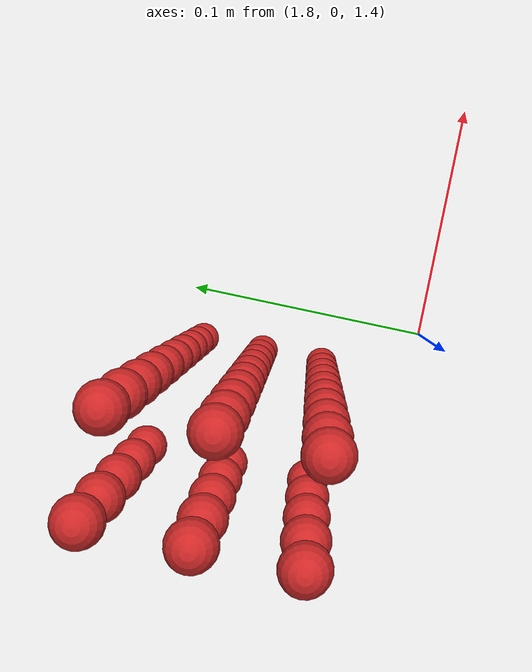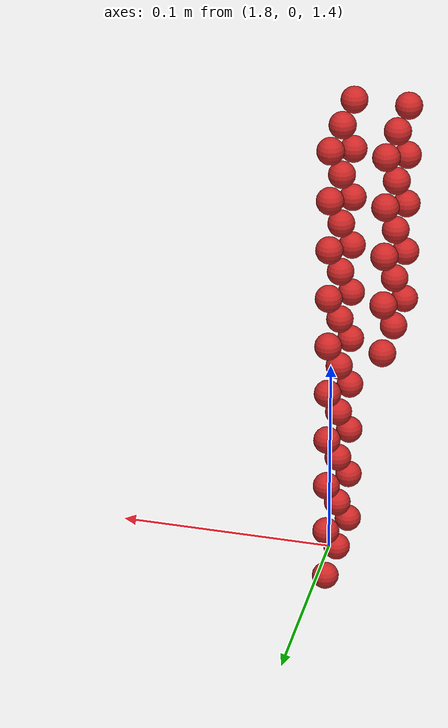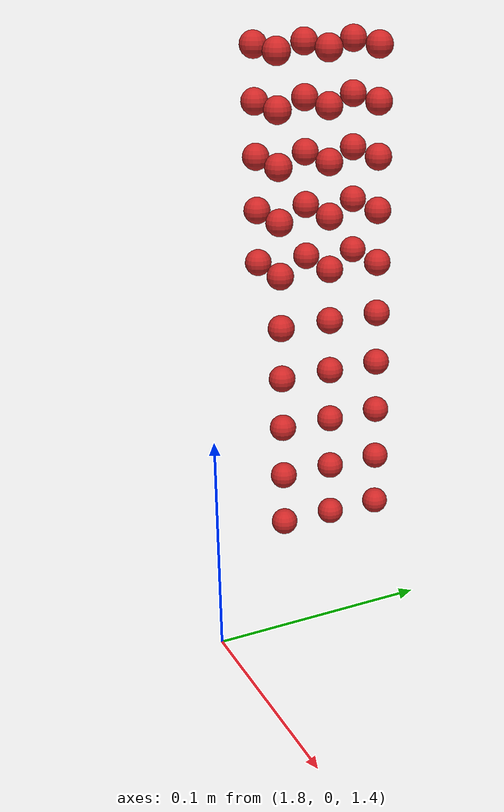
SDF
<sdf version="1.4">
 <world name="default">
  <model name="ground_plane">
   <static>1</static>
   <link name="link">
    <collision name="collision">
     <geometry><plane><normal>0 0 1</normal><size>100 100</size></plane></geometry>
     <surface><friction><ode><mu>100</mu><mu2>50</mu2></ode></friction></surface>
    </collision>
    <visual name="visual">
     <cast_shadows>0</cast_shadows>
     <geometry><plane><normal>0 0 1</normal><size>100 100</size></plane></geometry>
     <material>
      <script><uri>file://media/materials/scripts/gazebo.material</uri><name>Gazebo/Grey</name></script>
     </material>
    </visual>
    <velocity_decay><linear>0</linear><angular>0</angular></velocity_decay>
   </link>
  </model>
  <model name="sphere2">
   <pose>0.891343 0.020112 0.722288 0 0 0</pose>
   <link name="link">
    <pose>0.891343 0.020112 0.722288 0 0 0</pose>
    <inertial>
     <mass>0.001</mass>
     <inertia>
      <ixx>0.004</ixx>
      <ixy>0.000000</ixy>
      <ixz>0.000000</ixz>
      <iyy>0.004</iyy>
      <iyz>0.000000</iyz>
      <izz>0.004</izz>
     </inertia>
    </inertial>
    <collision name="collision">
     <surface>
      <contact><ode><kp>10000000000.000000</kp><kd>1</kd></ode></contact>
      <friction><ode><mu>0.01</mu><mu2>0.01</mu2></ode></friction>
     </surface>
     <geometry><sphere><radius>0.006</radius></sphere></geometry>
    </collision>
    <visual name="visual">
     <geometry><sphere><radius>0.006</radius></sphere></geometry>
     <material>
      <script><uri>file://media/materials/scripts/gazebo.material</uri><name>Gazebo/Red</name></script>
     </material>
    </visual>
   </link>
  </model>
  <model name="sphere5">
   <pose>0.891343 0.032112 0.722288 0 0 0</pose>
   <link name="link">
    <pose>0.891343 0.032112 0.722288 0 0 0</pose>
    <inertial>
     <mass>0.001</mass>
     <inertia>
      <ixx>0.004</ixx>
      <ixy>0.000000</ixy>
      <ixz>0.000000</ixz>
      <iyy>0.004</iyy>
      <iyz>0.000000</iyz>
      <izz>0.004</izz>
     </inertia>
    </inertial>
    <collision name="collision">
     <surface>
      <contact><ode><kp>10000000000.000000</kp><kd>1</kd></ode></contact>
      <friction><ode><mu>0.01</mu><mu2>0.01</mu2></ode></friction>
     </surface>
     <geometry><sphere><radius>0.006</radius></sphere></geometry>
    </collision>
    <visual name="visual">
     <geometry><sphere><radius>0.006</radius></sphere></geometry>
     <material>
      <script><uri>file://media/materials/scripts/gazebo.material</uri><name>Gazebo/Red</name></script>
     </material>
    </visual>
   </link>
  </model>
  <model name="sphere8">
   <pose>0.891343 0.044112 0.722288 0 0 0</pose>
   <link name="link">
    <pose>0.891343 0.044112 0.722288 0 0 0</pose>
    <inertial>
     <mass>0.001</mass>
     <inertia>
      <ixx>0.004</ixx>
      <ixy>0.000000</ixy>
      <ixz>0.000000</ixz>
      <iyy>0.004</iyy>
      <iyz>0.000000</iyz>
      <izz>0.004</izz>
     </inertia>
    </inertial>
    <collision name="collision">
     <surface>
      <contact><ode><kp>10000000000.000000</kp><kd>1</kd></ode></contact>
      <friction><ode><mu>0.01</mu><mu2>0.01</mu2></ode></friction>
     </surface>
     <geometry><sphere><radius>0.006</radius></sphere></geometry>
    </collision>
    <visual name="visual">
     <geometry><sphere><radius>0.006</radius></sphere></geometry>
     <material>
      <script><uri>file://media/materials/scripts/gazebo.material</uri><name>Gazebo/Red</name></script>
     </material>
    </visual>
   </link>
  </model>
  <model name="sphere11">
   <pose>0.891343 0.020112 0.734288 0 0 0</pose>
   <link name="link">
    <pose>0.891343 0.020112 0.734288 0 0 0</pose>
    <inertial>
     <mass>0.001</mass>
     <inertia>
      <ixx>0.004</ixx>
      <ixy>0.000000</ixy>
      <ixz>0.000000</ixz>
      <iyy>0.004</iyy>
      <iyz>0.000000</iyz>
      <izz>0.004</izz>
     </inertia>
    </inertial>
    <collision name="collision">
     <surface>
      <contact><ode><kp>10000000000.000000</kp><kd>1</kd></ode></contact>
      <friction><ode><mu>0.01</mu><mu2>0.01</mu2></ode></friction>
     </surface>
     <geometry><sphere><radius>0.006</radius></sphere></geometry>
    </collision>
    <visual name="visual">
     <geometry><sphere><radius>0.006</radius></sphere></geometry>
     <material>
      <script><uri>file://media/materials/scripts/gazebo.material</uri><name>Gazebo/Red</name></script>
     </material>
    </visual>
   </link>
  </model>
  <model name="sphere14">
   <pose>0.891343 0.032112 0.734288 0 0 0</pose>
   <link name="link">
    <pose>0.891343 0.032112 0.734288 0 0 0</pose>
    <inertial>
     <mass>0.001</mass>
     <inertia>
      <ixx>0.004</ixx>
      <ixy>0.000000</ixy>
      <ixz>0.000000</ixz>
      <iyy>0.004</iyy>
      <iyz>0.000000</iyz>
      <izz>0.004</izz>
     </inertia>
    </inertial>
    <collision name="collision">
     <surface>
      <contact><ode><kp>10000000000.000000</kp><kd>1</kd></ode></contact>
      <friction><ode><mu>0.01</mu><mu2>0.01</mu2></ode></friction>
     </surface>
     <geometry><sphere><radius>0.006</radius></sphere></geometry>
    </collision>
    <visual name="visual">
     <geometry><sphere><radius>0.006</radius></sphere></geometry>
     <material>
      <script><uri>file://media/materials/scripts/gazebo.material</uri><name>Gazebo/Red</name></script>
     </material>
    </visual>
   </link>
  </model>
  <model name="sphere17">
   <pose>0.891343 0.044112 0.734288 0 0 0</pose>
   <link name="link">
    <pose>0.891343 0.044112 0.734288 0 0 0</pose>
    <inertial>
     <mass>0.001</mass>
     <inertia>
      <ixx>0.004</ixx>
      <ixy>0.000000</ixy>
      <ixz>0.000000</ixz>
      <iyy>0.004</iyy>
      <iyz>0.000000</iyz>
      <izz>0.004</izz>
     </inertia>
    </inertial>
    <collision name="collision">
     <surface>
      <contact><ode><kp>10000000000.000000</kp><kd>1</kd></ode></contact>
      <friction><ode><mu>0.01</mu><mu2>0.01</mu2></ode></friction>
     </surface>
     <geometry><sphere><radius>0.006</radius></sphere></geometry>
    </collision>
    <visual name="visual">
     <geometry><sphere><radius>0.006</radius></sphere></geometry>
     <material>
      <script><uri>file://media/materials/scripts/gazebo.material</uri><name>Gazebo/Red</name></script>
     </material>
    </visual>
   </link>
  </model>
  <model name="sphere20">
   <pose>0.891343 0.020112 0.746288 0 0 0</pose>
   <link name="link">
    <pose>0.891343 0.020112 0.746288 0 0 0</pose>
    <inertial>
     <mass>0.001</mass>
     <inertia>
      <ixx>0.004</ixx>
      <ixy>0.000000</ixy>
      <ixz>0.000000</ixz>
      <iyy>0.004</iyy>
      <iyz>0.000000</iyz>
      <izz>0.004</izz>
     </inertia>
    </inertial>
    <collision name="collision">
     <surface>
      <contact><ode><kp>10000000000.000000</kp><kd>1</kd></ode></contact>
      <friction><ode><mu>0.01</mu><mu2>0.01</mu2></ode></friction>
     </surface>
     <geometry><sphere><radius>0.006</radius></sphere></geometry>
    </collision>
    <visual name="visual">
     <geometry><sphere><radius>0.006</radius></sphere></geometry>
     <material>
      <script><uri>file://media/materials/scripts/gazebo.material</uri><name>Gazebo/Red</name></script>
     </material>
    </visual>
   </link>
  </model>
  <model name="sphere23">
   <pose>0.891343 0.032112 0.746288 0 0 0</pose>
   <link name="link">
    <pose>0.891343 0.032112 0.746288 0 0 0</pose>
    <inertial>
     <mass>0.001</mass>
     <inertia>
      <ixx>0.004</ixx>
      <ixy>0.000000</ixy>
      <ixz>0.000000</ixz>
      <iyy>0.004</iyy>
      <iyz>0.000000</iyz>
      <izz>0.004</izz>
     </inertia>
    </inertial>
    <collision name="collision">
     <surface>
      <contact><ode><kp>10000000000.000000</kp><kd>1</kd></ode></contact>
      <friction><ode><mu>0.01</mu><mu2>0.01</mu2></ode></friction>
     </surface>
     <geometry><sphere><radius>0.006</radius></sphere></geometry>
    </collision>
    <visual name="visual">
     <geometry><sphere><radius>0.006</radius></sphere></geometry>
     <material>
      <script><uri>file://media/materials/scripts/gazebo.material</uri><name>Gazebo/Red</name></script>
     </material>
    </visual>
   </link>
  </model>
  <model name="sphere26">
   <pose>0.891343 0.044112 0.746288 0 0 0</pose>
   <link name="link">
    <pose>0.891343 0.044112 0.746288 0 0 0</pose>
    <inertial>
     <mass>0.001</mass>
     <inertia>
      <ixx>0.004</ixx>
      <ixy>0.000000</ixy>
      <ixz>0.000000</ixz>
      <iyy>0.004</iyy>
      <iyz>0.000000</iyz>
      <izz>0.004</izz>
     </inertia>
    </inertial>
    <collision name="collision">
     <surface>
      <contact><ode><kp>10000000000.000000</kp><kd>1</kd></ode></contact>
      <friction><ode><mu>0.01</mu><mu2>0.01</mu2></ode></friction>
     </surface>
     <geometry><sphere><radius>0.006</radius></sphere></geometry>
    </collision>
    <visual name="visual">
     <geometry><sphere><radius>0.006</radius></sphere></geometry>
     <material>
      <script><uri>file://media/materials/scripts/gazebo.material</uri><name>Gazebo/Red</name></script>
     </material>
    </visual>
   </link>
  </model>
  <model name="sphere29">
   <pose>0.891343 0.020112 0.758288 0 0 0</pose>
   <link name="link">
    <pose>0.891343 0.020112 0.758288 0 0 0</pose>
    <inertial>
     <mass>0.001</mass>
     <inertia>
      <ixx>0.004</ixx>
      <ixy>0.000000</ixy>
      <ixz>0.000000</ixz>
      <iyy>0.004</iyy>
      <iyz>0.000000</iyz>
      <izz>0.004</izz>
     </inertia>
    </inertial>
    <collision name="collision">
     <surface>
      <contact><ode><kp>10000000000.000000</kp><kd>1</kd></ode></contact>
      <friction><ode><mu>0.01</mu><mu2>0.01</mu2></ode></friction>
     </surface>
     <geometry><sphere><radius>0.006</radius></sphere></geometry>
    </collision>
    <visual name="visual">
     <geometry><sphere><radius>0.006</radius></sphere></geometry>
     <material>
      <script><uri>file://media/materials/scripts/gazebo.material</uri><name>Gazebo/Red</name></script>
     </material>
    </visual>
   </link>
  </model>
  <model name="sphere32">
   <pose>0.891343 0.032112 0.758288 0 0 0</pose>
   <link name="link">
    <pose>0.891343 0.032112 0.758288 0 0 0</pose>
    <inertial>
     <mass>0.001</mass>
     <inertia>
      <ixx>0.004</ixx>
      <ixy>0.000000</ixy>
      <ixz>0.000000</ixz>
      <iyy>0.004</iyy>
      <iyz>0.000000</iyz>
      <izz>0.004</izz>
     </inertia>
    </inertial>
    <collision name="collision">
     <surface>
      <contact><ode><kp>10000000000.000000</kp><kd>1</kd></ode></contact>
      <friction><ode><mu>0.01</mu><mu2>0.01</mu2></ode></friction>
     </surface>
     <geometry><sphere><radius>0.006</radius></sphere></geometry>
    </collision>
    <visual name="visual">
     <geometry><sphere><radius>0.006</radius></sphere></geometry>
     <material>
      <script><uri>file://media/materials/scripts/gazebo.material</uri><name>Gazebo/Red</name></script>
     </material>
    </visual>
   </link>
  </model>
  <model name="sphere35">
   <pose>0.891343 0.044112 0.758288 0 0 0</pose>
   <link name="link">
    <pose>0.891343 0.044112 0.758288 0 0 0</pose>
    <inertial>
     <mass>0.001</mass>
     <inertia>
      <ixx>0.004</ixx>
      <ixy>0.000000</ixy>
      <ixz>0.000000</ixz>
      <iyy>0.004</iyy>
      <iyz>0.000000</iyz>
      <izz>0.004</izz>
     </inertia>
    </inertial>
    <collision name="collision">
     <surface>
      <contact><ode><kp>10000000000.000000</kp><kd>1</kd></ode></contact>
      <friction><ode><mu>0.01</mu><mu2>0.01</mu2></ode></friction>
     </surface>
     <geometry><sphere><radius>0.006</radius></sphere></geometry>
    </collision>
    <visual name="visual">
     <geometry><sphere><radius>0.006</radius></sphere></geometry>
     <material>
      <script><uri>file://media/materials/scripts/gazebo.material</uri><name>Gazebo/Red</name></script>
     </material>
    </visual>
   </link>
  </model>
  <model name="sphere38">
   <pose>0.891343 0.020112 0.770288 0 0 0</pose>
   <link name="link">
    <pose>0.891343 0.020112 0.770288 0 0 0</pose>
    <inertial>
     <mass>0.001</mass>
     <inertia>
      <ixx>0.004</ixx>
      <ixy>0.000000</ixy>
      <ixz>0.000000</ixz>
      <iyy>0.004</iyy>
      <iyz>0.000000</iyz>
      <izz>0.004</izz>
     </inertia>
    </inertial>
    <collision name="collision">
     <surface>
      <contact><ode><kp>10000000000.000000</kp><kd>1</kd></ode></contact>
      <friction><ode><mu>0.01</mu><mu2>0.01</mu2></ode></friction>
     </surface>
     <geometry><sphere><radius>0.006</radius></sphere></geometry>
    </collision>
    <visual name="visual">
     <geometry><sphere><radius>0.006</radius></sphere></geometry>
     <material>
      <script><uri>file://media/materials/scripts/gazebo.material</uri><name>Gazebo/Red</name></script>
     </material>
    </visual>
   </link>
  </model>
  <model name="sphere41">
   <pose>0.891343 0.032112 0.770288 0 0 0</pose>
   <link name="link">
    <pose>0.891343 0.032112 0.770288 0 0 0</pose>
    <inertial>
     <mass>0.001</mass>
     <inertia>
      <ixx>0.004</ixx>
      <ixy>0.000000</ixy>
      <ixz>0.000000</ixz>
      <iyy>0.004</iyy>
      <iyz>0.000000</iyz>
      <izz>0.004</izz>
     </inertia>
    </inertial>
    <collision name="collision">
     <surface>
      <contact><ode><kp>10000000000.000000</kp><kd>1</kd></ode></contact>
      <friction><ode><mu>0.01</mu><mu2>0.01</mu2></ode></friction>
     </surface>
     <geometry><sphere><radius>0.006</radius></sphere></geometry>
    </collision>
    <visual name="visual">
     <geometry><sphere><radius>0.006</radius></sphere></geometry>
     <material>
      <script><uri>file://media/materials/scripts/gazebo.material</uri><name>Gazebo/Red</name></script>
     </material>
    </visual>
   </link>
  </model>
  <model name="sphere44">
   <pose>0.891343 0.044112 0.770288 0 0 0</pose>
   <link name="link">
    <pose>0.891343 0.044112 0.770288 0 0 0</pose>
    <inertial>
     <mass>0.001</mass>
     <inertia>
      <ixx>0.004</ixx>
      <ixy>0.000000</ixy>
      <ixz>0.000000</ixz>
      <iyy>0.004</iyy>
      <iyz>0.000000</iyz>
      <izz>0.004</izz>
     </inertia>
    </inertial>
    <collision name="collision">
     <surface>
      <contact><ode><kp>10000000000.000000</kp><kd>1</kd></ode></contact>
      <friction><ode><mu>0.01</mu><mu2>0.01</mu2></ode></friction>
     </surface>
     <geometry><sphere><radius>0.006</radius></sphere></geometry>
    </collision>
    <visual name="visual">
     <geometry><sphere><radius>0.006</radius></sphere></geometry>
     <material>
      <script><uri>file://media/materials/scripts/gazebo.material</uri><name>Gazebo/Red</name></script>
     </material>
    </visual>
   </link>
  </model>
  <model name="sphere46">
   <pose>0.879343 0.020112 0.782288 0 0 0</pose>
   <link name="link">
    <pose>0.879343 0.020112 0.782288 0 0 0</pose>
    <inertial>
     <mass>0.001</mass>
     <inertia>
      <ixx>0.004</ixx>
      <ixy>0.000000</ixy>
      <ixz>0.000000</ixz>
      <iyy>0.004</iyy>
      <iyz>0.000000</iyz>
      <izz>0.004</izz>
     </inertia>
    </inertial>
    <collision name="collision">
     <surface>
      <contact><ode><kp>10000000000.000000</kp><kd>1</kd></ode></contact>
      <friction><ode><mu>0.01</mu><mu2>0.01</mu2></ode></friction>
     </surface>
     <geometry><sphere><radius>0.006</radius></sphere></geometry>
    </collision>
    <visual name="visual">
     <geometry><sphere><radius>0.006</radius></sphere></geometry>
     <material>
      <script><uri>file://media/materials/scripts/gazebo.material</uri><name>Gazebo/Red</name></script>
     </material>
    </visual>
   </link>
  </model>
  <model name="sphere47">
   <pose>0.891343 0.020112 0.782288 0 0 0</pose>
   <link name="link">
    <pose>0.891343 0.020112 0.782288 0 0 0</pose>
    <inertial>
     <mass>0.001</mass>
     <inertia>
      <ixx>0.004</ixx>
      <ixy>0.000000</ixy>
      <ixz>0.000000</ixz>
      <iyy>0.004</iyy>
      <iyz>0.000000</iyz>
      <izz>0.004</izz>
     </inertia>
    </inertial>
    <collision name="collision">
     <surface>
      <contact><ode><kp>10000000000.000000</kp><kd>1</kd></ode></contact>
      <friction><ode><mu>0.01</mu><mu2>0.01</mu2></ode></friction>
     </surface>
     <geometry><sphere><radius>0.006</radius></sphere></geometry>
    </collision>
    <visual name="visual">
     <geometry><sphere><radius>0.006</radius></sphere></geometry>
     <material>
      <script><uri>file://media/materials/scripts/gazebo.material</uri><name>Gazebo/Red</name></script>
     </material>
    </visual>
   </link>
  </model>
  <model name="sphere49">
   <pose>0.879343 0.032112 0.782288 0 0 0</pose>
   <link name="link">
    <pose>0.879343 0.032112 0.782288 0 0 0</pose>
    <inertial>
     <mass>0.001</mass>
     <inertia>
      <ixx>0.004</ixx>
      <ixy>0.000000</ixy>
      <ixz>0.000000</ixz>
      <iyy>0.004</iyy>
      <iyz>0.000000</iyz>
      <izz>0.004</izz>
     </inertia>
    </inertial>
    <collision name="collision">
     <surface>
      <contact><ode><kp>10000000000.000000</kp><kd>1</kd></ode></contact>
      <friction><ode><mu>0.01</mu><mu2>0.01</mu2></ode></friction>
     </surface>
     <geometry><sphere><radius>0.006</radius></sphere></geometry>
    </collision>
    <visual name="visual">
     <geometry><sphere><radius>0.006</radius></sphere></geometry>
     <material>
      <script><uri>file://media/materials/scripts/gazebo.material</uri><name>Gazebo/Red</name></script>
     </material>
    </visual>
   </link>
  </model>
  <model name="sphere50">
   <pose>0.891343 0.032112 0.782288 0 0 0</pose>
   <link name="link">
    <pose>0.891343 0.032112 0.782288 0 0 0</pose>
    <inertial>
     <mass>0.001</mass>
     <inertia>
      <ixx>0.004</ixx>
      <ixy>0.000000</ixy>
      <ixz>0.000000</ixz>
      <iyy>0.004</iyy>
      <iyz>0.000000</iyz>
      <izz>0.004</izz>
     </inertia>
    </inertial>
    <collision name="collision">
     <surface>
      <contact><ode><kp>10000000000.000000</kp><kd>1</kd></ode></contact>
      <friction><ode><mu>0.01</mu><mu2>0.01</mu2></ode></friction>
     </surface>
     <geometry><sphere><radius>0.006</radius></sphere></geometry>
    </collision>
    <visual name="visual">
     <geometry><sphere><radius>0.006</radius></sphere></geometry>
     <material>
      <script><uri>file://media/materials/scripts/gazebo.material</uri><name>Gazebo/Red</name></script>
     </material>
    </visual>
   </link>
  </model>
  <model name="sphere52">
   <pose>0.879343 0.044112 0.782288 0 0 0</pose>
   <link name="link">
    <pose>0.879343 0.044112 0.782288 0 0 0</pose>
    <inertial>
     <mass>0.001</mass>
     <inertia>
      <ixx>0.004</ixx>
      <ixy>0.000000</ixy>
      <ixz>0.000000</ixz>
      <iyy>0.004</iyy>
      <iyz>0.000000</iyz>
      <izz>0.004</izz>
     </inertia>
    </inertial>
    <collision name="collision">
     <surface>
      <contact><ode><kp>10000000000.000000</kp><kd>1</kd></ode></contact>
      <friction><ode><mu>0.01</mu><mu2>0.01</mu2></ode></friction>
     </surface>
     <geometry><sphere><radius>0.006</radius></sphere></geometry>
    </collision>
    <visual name="visual">
     <geometry><sphere><radius>0.006</radius></sphere></geometry>
     <material>
      <script><uri>file://media/materials/scripts/gazebo.material</uri><name>Gazebo/Red</name></script>
     </material>
    </visual>
   </link>
  </model>
  <model name="sphere53">
   <pose>0.891343 0.044112 0.782288 0 0 0</pose>
   <link name="link">
    <pose>0.891343 0.044112 0.782288 0 0 0</pose>
    <inertial>
     <mass>0.001</mass>
     <inertia>
      <ixx>0.004</ixx>
      <ixy>0.000000</ixy>
      <ixz>0.000000</ixz>
      <iyy>0.004</iyy>
      <iyz>0.000000</iyz>
      <izz>0.004</izz>
     </inertia>
    </inertial>
    <collision name="collision">
     <surface>
      <contact><ode><kp>10000000000.000000</kp><kd>1</kd></ode></contact>
      <friction><ode><mu>0.01</mu><mu2>0.01</mu2></ode></friction>
     </surface>
     <geometry><sphere><radius>0.006</radius></sphere></geometry>
    </collision>
    <visual name="visual">
     <geometry><sphere><radius>0.006</radius></sphere></geometry>
     <material>
      <script><uri>file://media/materials/scripts/gazebo.material</uri><name>Gazebo/Red</name></script>
     </material>
    </visual>
   </link>
  </model>
  <model name="sphere55">
   <pose>0.879343 0.020112 0.794288 0 0 0</pose>
   <link name="link">
    <pose>0.879343 0.020112 0.794288 0 0 0</pose>
    <inertial>
     <mass>0.001</mass>
     <inertia>
      <ixx>0.004</ixx>
      <ixy>0.000000</ixy>
      <ixz>0.000000</ixz>
      <iyy>0.004</iyy>
      <iyz>0.000000</iyz>
      <izz>0.004</izz>
     </inertia>
    </inertial>
    <collision name="collision">
     <surface>
      <contact><ode><kp>10000000000.000000</kp><kd>1</kd></ode></contact>
      <friction><ode><mu>0.01</mu><mu2>0.01</mu2></ode></friction>
     </surface>
     <geometry><sphere><radius>0.006</radius></sphere></geometry>
    </collision>
    <visual name="visual">
     <geometry><sphere><radius>0.006</radius></sphere></geometry>
     <material>
      <script><uri>file://media/materials/scripts/gazebo.material</uri><name>Gazebo/Red</name></script>
     </material>
    </visual>
   </link>
  </model>
  <model name="sphere56">
   <pose>0.891343 0.020112 0.794288 0 0 0</pose>
   <link name="link">
    <pose>0.891343 0.020112 0.794288 0 0 0</pose>
    <inertial>
     <mass>0.001</mass>
     <inertia>
      <ixx>0.004</ixx>
      <ixy>0.000000</ixy>
      <ixz>0.000000</ixz>
      <iyy>0.004</iyy>
      <iyz>0.000000</iyz>
      <izz>0.004</izz>
     </inertia>
    </inertial>
    <collision name="collision">
     <surface>
      <contact><ode><kp>10000000000.000000</kp><kd>1</kd></ode></contact>
      <friction><ode><mu>0.01</mu><mu2>0.01</mu2></ode></friction>
     </surface>
     <geometry><sphere><radius>0.006</radius></sphere></geometry>
    </collision>
    <visual name="visual">
     <geometry><sphere><radius>0.006</radius></sphere></geometry>
     <material>
      <script><uri>file://media/materials/scripts/gazebo.material</uri><name>Gazebo/Red</name></script>
     </material>
    </visual>
   </link>
  </model>
  <model name="sphere58">
   <pose>0.879343 0.032112 0.794288 0 0 0</pose>
   <link name="link">
    <pose>0.879343 0.032112 0.794288 0 0 0</pose>
    <inertial>
     <mass>0.001</mass>
     <inertia>
      <ixx>0.004</ixx>
      <ixy>0.000000</ixy>
      <ixz>0.000000</ixz>
      <iyy>0.004</iyy>
      <iyz>0.000000</iyz>
      <izz>0.004</izz>
     </inertia>
    </inertial>
    <collision name="collision">
     <surface>
      <contact><ode><kp>10000000000.000000</kp><kd>1</kd></ode></contact>
      <friction><ode><mu>0.01</mu><mu2>0.01</mu2></ode></friction>
     </surface>
     <geometry><sphere><radius>0.006</radius></sphere></geometry>
    </collision>
    <visual name="visual">
     <geometry><sphere><radius>0.006</radius></sphere></geometry>
     <material>
      <script><uri>file://media/materials/scripts/gazebo.material</uri><name>Gazebo/Red</name></script>
     </material>
    </visual>
   </link>
  </model>
  <model name="sphere59">
   <pose>0.891343 0.032112 0.794288 0 0 0</pose>
   <link name="link">
    <pose>0.891343 0.032112 0.794288 0 0 0</pose>
    <inertial>
     <mass>0.001</mass>
     <inertia>
      <ixx>0.004</ixx>
      <ixy>0.000000</ixy>
      <ixz>0.000000</ixz>
      <iyy>0.004</iyy>
      <iyz>0.000000</iyz>
      <izz>0.004</izz>
     </inertia>
    </inertial>
    <collision name="collision">
     <surface>
      <contact><ode><kp>10000000000.000000</kp><kd>1</kd></ode></contact>
      <friction><ode><mu>0.01</mu><mu2>0.01</mu2></ode></friction>
     </surface>
     <geometry><sphere><radius>0.006</radius></sphere></geometry>
    </collision>
    <visual name="visual">
     <geometry><sphere><radius>0.006</radius></sphere></geometry>
     <material>
      <script><uri>file://media/materials/scripts/gazebo.material</uri><name>Gazebo/Red</name></script>
     </material>
    </visual>
   </link>
  </model>
  <model name="sphere61">
   <pose>0.879343 0.044112 0.794288 0 0 0</pose>
   <link name="link">
    <pose>0.879343 0.044112 0.794288 0 0 0</pose>
    <inertial>
     <mass>0.001</mass>
     <inertia>
      <ixx>0.004</ixx>
      <ixy>0.000000</ixy>
      <ixz>0.000000</ixz>
      <iyy>0.004</iyy>
      <iyz>0.000000</iyz>
      <izz>0.004</izz>
     </inertia>
    </inertial>
    <collision name="collision">
     <surface>
      <contact><ode><kp>10000000000.000000</kp><kd>1</kd></ode></contact>
      <friction><ode><mu>0.01</mu><mu2>0.01</mu2></ode></friction>
     </surface>
     <geometry><sphere><radius>0.006</radius></sphere></geometry>
    </collision>
    <visual name="visual">
     <geometry><sphere><radius>0.006</radius></sphere></geometry>
     <material>
      <script><uri>file://media/materials/scripts/gazebo.material</uri><name>Gazebo/Red</name></script>
     </material>
    </visual>
   </link>
  </model>
  <model name="sphere62">
   <pose>0.891343 0.044112 0.794288 0 0 0</pose>
   <link name="link">
    <pose>0.891343 0.044112 0.794288 0 0 0</pose>
    <inertial>
     <mass>0.001</mass>
     <inertia>
      <ixx>0.004</ixx>
      <ixy>0.000000</ixy>
      <ixz>0.000000</ixz>
      <iyy>0.004</iyy>
      <iyz>0.000000</iyz>
      <izz>0.004</izz>
     </inertia>
    </inertial>
    <collision name="collision">
     <surface>
      <contact><ode><kp>10000000000.000000</kp><kd>1</kd></ode></contact>
      <friction><ode><mu>0.01</mu><mu2>0.01</mu2></ode></friction>
     </surface>
     <geometry><sphere><radius>0.006</radius></sphere></geometry>
    </collision>
    <visual name="visual">
     <geometry><sphere><radius>0.006</radius></sphere></geometry>
     <material>
      <script><uri>file://media/materials/scripts/gazebo.material</uri><name>Gazebo/Red</name></script>
     </material>
    </visual>
   </link>
  </model>
  <model name="sphere64">
   <pose>0.879343 0.020112 0.806288 0 0 0</pose>
   <link name="link">
    <pose>0.879343 0.020112 0.806288 0 0 0</pose>
    <inertial>
     <mass>0.001</mass>
     <inertia>
      <ixx>0.004</ixx>
      <ixy>0.000000</ixy>
      <ixz>0.000000</ixz>
      <iyy>0.004</iyy>
      <iyz>0.000000</iyz>
      <izz>0.004</izz>
     </inertia>
    </inertial>
    <collision name="collision">
     <surface>
      <contact><ode><kp>10000000000.000000</kp><kd>1</kd></ode></contact>
      <friction><ode><mu>0.01</mu><mu2>0.01</mu2></ode></friction>
     </surface>
     <geometry><sphere><radius>0.006</radius></sphere></geometry>
    </collision>
    <visual name="visual">
     <geometry><sphere><radius>0.006</radius></sphere></geometry>
     <material>
      <script><uri>file://media/materials/scripts/gazebo.material</uri><name>Gazebo/Red</name></script>
     </material>
    </visual>
   </link>
  </model>
  <model name="sphere65">
   <pose>0.891343 0.020112 0.806288 0 0 0</pose>
   <link name="link">
    <pose>0.891343 0.020112 0.806288 0 0 0</pose>
    <inertial>
     <mass>0.001</mass>
     <inertia>
      <ixx>0.004</ixx>
      <ixy>0.000000</ixy>
      <ixz>0.000000</ixz>
      <iyy>0.004</iyy>
      <iyz>0.000000</iyz>
      <izz>0.004</izz>
     </inertia>
    </inertial>
    <collision name="collision">
     <surface>
      <contact><ode><kp>10000000000.000000</kp><kd>1</kd></ode></contact>
      <friction><ode><mu>0.01</mu><mu2>0.01</mu2></ode></friction>
     </surface>
     <geometry><sphere><radius>0.006</radius></sphere></geometry>
    </collision>
    <visual name="visual">
     <geometry><sphere><radius>0.006</radius></sphere></geometry>
     <material>
      <script><uri>file://media/materials/scripts/gazebo.material</uri><name>Gazebo/Red</name></script>
     </material>
    </visual>
   </link>
  </model>
  <model name="sphere67">
   <pose>0.879343 0.032112 0.806288 0 0 0</pose>
   <link name="link">
    <pose>0.879343 0.032112 0.806288 0 0 0</pose>
    <inertial>
     <mass>0.001</mass>
     <inertia>
      <ixx>0.004</ixx>
      <ixy>0.000000</ixy>
      <ixz>0.000000</ixz>
      <iyy>0.004</iyy>
      <iyz>0.000000</iyz>
      <izz>0.004</izz>
     </inertia>
    </inertial>
    <collision name="collision">
     <surface>
      <contact><ode><kp>10000000000.000000</kp><kd>1</kd></ode></contact>
      <friction><ode><mu>0.01</mu><mu2>0.01</mu2></ode></friction>
     </surface>
     <geometry><sphere><radius>0.006</radius></sphere></geometry>
    </collision>
    <visual name="visual">
     <geometry><sphere><radius>0.006</radius></sphere></geometry>
     <material>
      <script><uri>file://media/materials/scripts/gazebo.material</uri><name>Gazebo/Red</name></script>
     </material>
    </visual>
   </link>
  </model>
  <model name="sphere68">
   <pose>0.891343 0.032112 0.806288 0 0 0</pose>
   <link name="link">
    <pose>0.891343 0.032112 0.806288 0 0 0</pose>
    <inertial>
     <mass>0.001</mass>
     <inertia>
      <ixx>0.004</ixx>
      <ixy>0.000000</ixy>
      <ixz>0.000000</ixz>
      <iyy>0.004</iyy>
      <iyz>0.000000</iyz>
      <izz>0.004</izz>
     </inertia>
    </inertial>
    <collision name="collision">
     <surface>
      <contact><ode><kp>10000000000.000000</kp><kd>1</kd></ode></contact>
      <friction><ode><mu>0.01</mu><mu2>0.01</mu2></ode></friction>
     </surface>
     <geometry><sphere><radius>0.006</radius></sphere></geometry>
    </collision>
    <visual name="visual">
     <geometry><sphere><radius>0.006</radius></sphere></geometry>
     <material>
      <script><uri>file://media/materials/scripts/gazebo.material</uri><name>Gazebo/Red</name></script>
     </material>
    </visual>
   </link>
  </model>
  <model name="sphere70">
   <pose>0.879343 0.044112 0.806288 0 0 0</pose>
   <link name="link">
    <pose>0.879343 0.044112 0.806288 0 0 0</pose>
    <inertial>
     <mass>0.001</mass>
     <inertia>
      <ixx>0.004</ixx>
      <ixy>0.000000</ixy>
      <ixz>0.000000</ixz>
      <iyy>0.004</iyy>
      <iyz>0.000000</iyz>
      <izz>0.004</izz>
     </inertia>
    </inertial>
    <collision name="collision">
     <surface>
      <contact><ode><kp>10000000000.000000</kp><kd>1</kd></ode></contact>
      <friction><ode><mu>0.01</mu><mu2>0.01</mu2></ode></friction>
     </surface>
     <geometry><sphere><radius>0.006</radius></sphere></geometry>
    </collision>
    <visual name="visual">
     <geometry><sphere><radius>0.006</radius></sphere></geometry>
     <material>
      <script><uri>file://media/materials/scripts/gazebo.material</uri><name>Gazebo/Red</name></script>
     </material>
    </visual>
   </link>
  </model>
  <model name="sphere71">
   <pose>0.891343 0.044112 0.806288 0 0 0</pose>
   <link name="link">
    <pose>0.891343 0.044112 0.806288 0 0 0</pose>
    <inertial>
     <mass>0.001</mass>
     <inertia>
      <ixx>0.004</ixx>
      <ixy>0.000000</ixy>
      <ixz>0.000000</ixz>
      <iyy>0.004</iyy>
      <iyz>0.000000</iyz>
      <izz>0.004</izz>
     </inertia>
    </inertial>
    <collision name="collision">
     <surface>
      <contact><ode><kp>10000000000.000000</kp><kd>1</kd></ode></contact>
      <friction><ode><mu>0.01</mu><mu2>0.01</mu2></ode></friction>
     </surface>
     <geometry><sphere><radius>0.006</radius></sphere></geometry>
    </collision>
    <visual name="visual">
     <geometry><sphere><radius>0.006</radius></sphere></geometry>
     <material>
      <script><uri>file://media/materials/scripts/gazebo.material</uri><name>Gazebo/Red</name></script>
     </material>
    </visual>
   </link>
  </model>
  <model name="sphere73">
   <pose>0.879343 0.020112 0.818288 0 0 0</pose>
   <link name="link">
    <pose>0.879343 0.020112 0.818288 0 0 0</pose>
    <inertial>
     <mass>0.001</mass>
     <inertia>
      <ixx>0.004</ixx>
      <ixy>0.000000</ixy>
      <ixz>0.000000</ixz>
      <iyy>0.004</iyy>
      <iyz>0.000000</iyz>
      <izz>0.004</izz>
     </inertia>
    </inertial>
    <collision name="collision">
     <surface>
      <contact><ode><kp>10000000000.000000</kp><kd>1</kd></ode></contact>
      <friction><ode><mu>0.01</mu><mu2>0.01</mu2></ode></friction>
     </surface>
     <geometry><sphere><radius>0.006</radius></sphere></geometry>
    </collision>
    <visual name="visual">
     <geometry><sphere><radius>0.006</radius></sphere></geometry>
     <material>
      <script><uri>file://media/materials/scripts/gazebo.material</uri><name>Gazebo/Red</name></script>
     </material>
    </visual>
   </link>
  </model>
  <model name="sphere74">
   <pose>0.891343 0.020112 0.818288 0 0 0</pose>
   <link name="link">
    <pose>0.891343 0.020112 0.818288 0 0 0</pose>
    <inertial>
     <mass>0.001</mass>
     <inertia>
      <ixx>0.004</ixx>
      <ixy>0.000000</ixy>
      <ixz>0.000000</ixz>
      <iyy>0.004</iyy>
      <iyz>0.000000</iyz>
      <izz>0.004</izz>
     </inertia>
    </inertial>
    <collision name="collision">
     <surface>
      <contact><ode><kp>10000000000.000000</kp><kd>1</kd></ode></contact>
      <friction><ode><mu>0.01</mu><mu2>0.01</mu2></ode></friction>
     </surface>
     <geometry><sphere><radius>0.006</radius></sphere></geometry>
    </collision>
    <visual name="visual">
     <geometry><sphere><radius>0.006</radius></sphere></geometry>
     <material>
      <script><uri>file://media/materials/scripts/gazebo.material</uri><name>Gazebo/Red</name></script>
     </material>
    </visual>
   </link>
  </model>
  <model name="sphere76">
   <pose>0.879343 0.032112 0.818288 0 0 0</pose>
   <link name="link">
    <pose>0.879343 0.032112 0.818288 0 0 0</pose>
    <inertial>
     <mass>0.001</mass>
     <inertia>
      <ixx>0.004</ixx>
      <ixy>0.000000</ixy>
      <ixz>0.000000</ixz>
      <iyy>0.004</iyy>
      <iyz>0.000000</iyz>
      <izz>0.004</izz>
     </inertia>
    </inertial>
    <collision name="collision">
     <surface>
      <contact><ode><kp>10000000000.000000</kp><kd>1</kd></ode></contact>
      <friction><ode><mu>0.01</mu><mu2>0.01</mu2></ode></friction>
     </surface>
     <geometry><sphere><radius>0.006</radius></sphere></geometry>
    </collision>
    <visual name="visual">
     <geometry><sphere><radius>0.006</radius></sphere></geometry>
     <material>
      <script><uri>file://media/materials/scripts/gazebo.material</uri><name>Gazebo/Red</name></script>
     </material>
    </visual>
   </link>
  </model>
  <model name="sphere77">
   <pose>0.891343 0.032112 0.818288 0 0 0</pose>
   <link name="link">
    <pose>0.891343 0.032112 0.818288 0 0 0</pose>
    <inertial>
     <mass>0.001</mass>
     <inertia>
      <ixx>0.004</ixx>
      <ixy>0.000000</ixy>
      <ixz>0.000000</ixz>
      <iyy>0.004</iyy>
      <iyz>0.000000</iyz>
      <izz>0.004</izz>
     </inertia>
    </inertial>
    <collision name="collision">
     <surface>
      <contact><ode><kp>10000000000.000000</kp><kd>1</kd></ode></contact>
      <friction><ode><mu>0.01</mu><mu2>0.01</mu2></ode></friction>
     </surface>
     <geometry><sphere><radius>0.006</radius></sphere></geometry>
    </collision>
    <visual name="visual">
     <geometry><sphere><radius>0.006</radius></sphere></geometry>
     <material>
      <script><uri>file://media/materials/scripts/gazebo.material</uri><name>Gazebo/Red</name></script>
     </material>
    </visual>
   </link>
  </model>
  <model name="sphere79">
   <pose>0.879343 0.044112 0.818288 0 0 0</pose>
   <link name="link">
    <pose>0.879343 0.044112 0.818288 0 0 0</pose>
    <inertial>
     <mass>0.001</mass>
     <inertia>
      <ixx>0.004</ixx>
      <ixy>0.000000</ixy>
      <ixz>0.000000</ixz>
      <iyy>0.004</iyy>
      <iyz>0.000000</iyz>
      <izz>0.004</izz>
     </inertia>
    </inertial>
    <collision name="collision">
     <surface>
      <contact><ode><kp>10000000000.000000</kp><kd>1</kd></ode></contact>
      <friction><ode><mu>0.01</mu><mu2>0.01</mu2></ode></friction>
     </surface>
     <geometry><sphere><radius>0.006</radius></sphere></geometry>
    </collision>
    <visual name="visual">
     <geometry><sphere><radius>0.006</radius></sphere></geometry>
     <material>
      <script><uri>file://media/materials/scripts/gazebo.material</uri><name>Gazebo/Red</name></script>
     </material>
    </visual>
   </link>
  </model>
  <model name="sphere80">
   <pose>0.891343 0.044112 0.818288 0 0 0</pose>
   <link name="link">
    <pose>0.891343 0.044112 0.818288 0 0 0</pose>
    <inertial>
     <mass>0.001</mass>
     <inertia>
      <ixx>0.004</ixx>
      <ixy>0.000000</ixy>
      <ixz>0.000000</ixz>
      <iyy>0.004</iyy>
      <iyz>0.000000</iyz>
      <izz>0.004</izz>
     </inertia>
    </inertial>
    <collision name="collision">
     <surface>
      <contact><ode><kp>10000000000.000000</kp><kd>1</kd></ode></contact>
      <friction><ode><mu>0.01</mu><mu2>0.01</mu2></ode></friction>
     </surface>
     <geometry><sphere><radius>0.006</radius></sphere></geometry>
    </collision>
    <visual name="visual">
     <geometry><sphere><radius>0.006</radius></sphere></geometry>
     <material>
      <script><uri>file://media/materials/scripts/gazebo.material</uri><name>Gazebo/Red</name></script>
     </material>
    </visual>
   </link>
  </model>
  <model name="sphere82">
   <pose>0.879343 0.020112 0.830288 0 0 0</pose>
   <link name="link">
    <pose>0.879343 0.020112 0.830288 0 0 0</pose>
    <inertial>
     <mass>0.001</mass>
     <inertia>
      <ixx>0.004</ixx>
      <ixy>0.000000</ixy>
      <ixz>0.000000</ixz>
      <iyy>0.004</iyy>
      <iyz>0.000000</iyz>
      <izz>0.004</izz>
     </inertia>
    </inertial>
    <collision name="collision">
     <surface>
      <contact><ode><kp>10000000000.000000</kp><kd>1</kd></ode></contact>
      <friction><ode><mu>0.01</mu><mu2>0.01</mu2></ode></friction>
     </surface>
     <geometry><sphere><radius>0.006</radius></sphere></geometry>
    </collision>
    <visual name="visual">
     <geometry><sphere><radius>0.006</radius></sphere></geometry>
     <material>
      <script><uri>file://media/materials/scripts/gazebo.material</uri><name>Gazebo/Red</name></script>
     </material>
    </visual>
   </link>
  </model>
  <model name="sphere83">
   <pose>0.891343 0.020112 0.830288 0 0 0</pose>
   <link name="link">
    <pose>0.891343 0.020112 0.830288 0 0 0</pose>
    <inertial>
     <mass>0.001</mass>
     <inertia>
      <ixx>0.004</ixx>
      <ixy>0.000000</ixy>
      <ixz>0.000000</ixz>
      <iyy>0.004</iyy>
      <iyz>0.000000</iyz>
      <izz>0.004</izz>
     </inertia>
    </inertial>
    <collision name="collision">
     <surface>
      <contact><ode><kp>10000000000.000000</kp><kd>1</kd></ode></contact>
      <friction><ode><mu>0.01</mu><mu2>0.01</mu2></ode></friction>
     </surface>
     <geometry><sphere><radius>0.006</radius></sphere></geometry>
    </collision>
    <visual name="visual">
     <geometry><sphere><radius>0.006</radius></sphere></geometry>
     <material>
      <script><uri>file://media/materials/scripts/gazebo.material</uri><name>Gazebo/Red</name></script>
     </material>
    </visual>
   </link>
  </model>
  <model name="sphere85">
   <pose>0.879343 0.032112 0.830288 0 0 0</pose>
   <link name="link">
    <pose>0.879343 0.032112 0.830288 0 0 0</pose>
    <inertial>
     <mass>0.001</mass>
     <inertia>
      <ixx>0.004</ixx>
      <ixy>0.000000</ixy>
      <ixz>0.000000</ixz>
      <iyy>0.004</iyy>
      <iyz>0.000000</iyz>
      <izz>0.004</izz>
     </inertia>
    </inertial>
    <collision name="collision">
     <surface>
      <contact><ode><kp>10000000000.000000</kp><kd>1</kd></ode></contact>
      <friction><ode><mu>0.01</mu><mu2>0.01</mu2></ode></friction>
     </surface>
     <geometry><sphere><radius>0.006</radius></sphere></geometry>
    </collision>
    <visual name="visual">
     <geometry><sphere><radius>0.006</radius></sphere></geometry>
     <material>
      <script><uri>file://media/materials/scripts/gazebo.material</uri><name>Gazebo/Red</name></script>
     </material>
    </visual>
   </link>
  </model>
  <model name="sphere86">
   <pose>0.891343 0.032112 0.830288 0 0 0</pose>
   <link name="link">
    <pose>0.891343 0.032112 0.830288 0 0 0</pose>
    <inertial>
     <mass>0.001</mass>
     <inertia>
      <ixx>0.004</ixx>
      <ixy>0.000000</ixy>
      <ixz>0.000000</ixz>
      <iyy>0.004</iyy>
      <iyz>0.000000</iyz>
      <izz>0.004</izz>
     </inertia>
    </inertial>
    <collision name="collision">
     <surface>
      <contact><ode><kp>10000000000.000000</kp><kd>1</kd></ode></contact>
      <friction><ode><mu>0.01</mu><mu2>0.01</mu2></ode></friction>
     </surface>
     <geometry><sphere><radius>0.006</radius></sphere></geometry>
    </collision>
    <visual name="visual">
     <geometry><sphere><radius>0.006</radius></sphere></geometry>
     <material>
      <script><uri>file://media/materials/scripts/gazebo.material</uri><name>Gazebo/Red</name></script>
     </material>
    </visual>
   </link>
  </model>
  <model name="sphere88">
   <pose>0.879343 0.044112 0.830288 0 0 0</pose>
   <link name="link">
    <pose>0.879343 0.044112 0.830288 0 0 0</pose>
    <inertial>
     <mass>0.001</mass>
     <inertia>
      <ixx>0.004</ixx>
      <ixy>0.000000</ixy>
      <ixz>0.000000</ixz>
      <iyy>0.004</iyy>
      <iyz>0.000000</iyz>
      <izz>0.004</izz>
     </inertia>
    </inertial>
    <collision name="collision">
     <surface>
      <contact><ode><kp>10000000000.000000</kp><kd>1</kd></ode></contact>
      <friction><ode><mu>0.01</mu><mu2>0.01</mu2></ode></friction>
     </surface>
     <geometry><sphere><radius>0.006</radius></sphere></geometry>
    </collision>
    <visual name="visual">
     <geometry><sphere><radius>0.006</radius></sphere></geometry>
     <material>
      <script><uri>file://media/materials/scripts/gazebo.material</uri><name>Gazebo/Red</name></script>
     </material>
    </visual>
   </link>
  </model>
  <model name="sphere89">
   <pose>0.891343 0.044112 0.830288 0 0 0</pose>
   <link name="link">
    <pose>0.891343 0.044112 0.830288 0 0 0</pose>
    <inertial>
     <mass>0.001</mass>
     <inertia>
      <ixx>0.004</ixx>
      <ixy>0.000000</ixy>
      <ixz>0.000000</ixz>
      <iyy>0.004</iyy>
      <iyz>0.000000</iyz>
      <izz>0.004</izz>
     </inertia>
    </inertial>
    <collision name="collision">
     <surface>
      <contact><ode><kp>10000000000.000000</kp><kd>1</kd></ode></contact>
      <friction><ode><mu>0.01</mu><mu2>0.01</mu2></ode></friction>
     </surface>
     <geometry><sphere><radius>0.006</radius></sphere></geometry>
    </collision>
    <visual name="visual">
     <geometry><sphere><radius>0.006</radius></sphere></geometry>
     <material>
      <script><uri>file://media/materials/scripts/gazebo.material</uri><name>Gazebo/Red</name></script>
     </material>
    </visual>
   </link>
  </model>
 </world>
</sdf>
